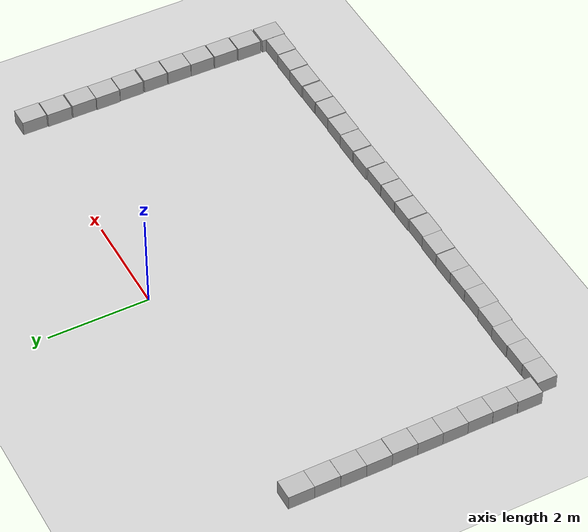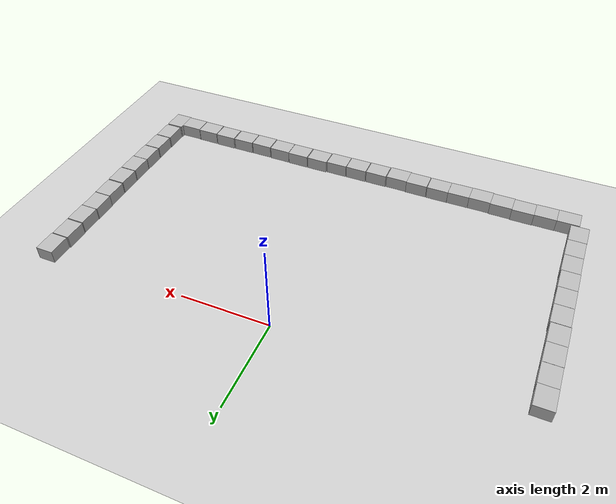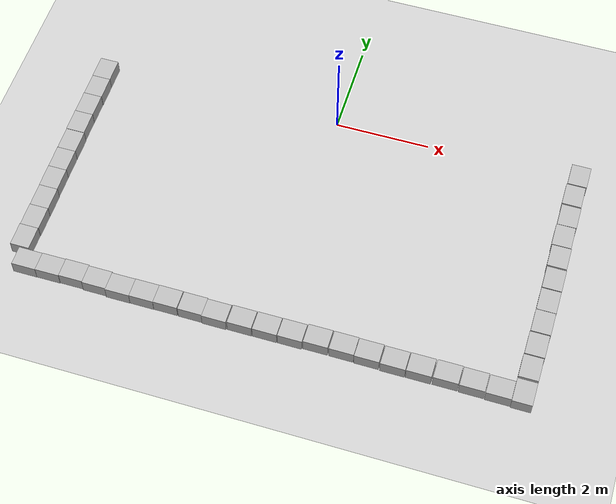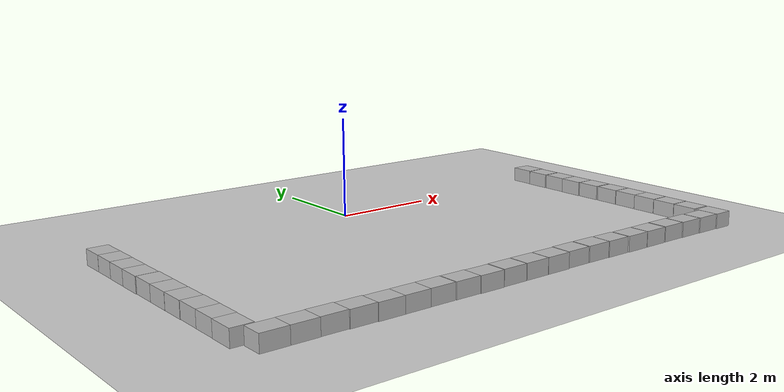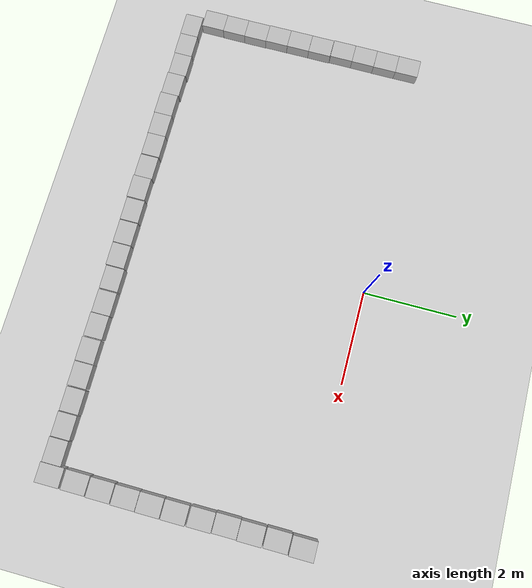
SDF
<sdf version="1.7">
 <world name="default">
  <model name="ground_plane">
   <static>1</static>
   <link name="link">
    <collision name="collision">
     <geometry><plane><normal>0 0 1</normal><size>100 100</size></plane></geometry>
     <surface>
      <contact><collide_bitmask>65535</collide_bitmask></contact>
      <friction><ode><mu>100</mu><mu2>50</mu2></ode></friction>
     </surface>
    </collision>
    <visual name="visual">
     <cast_shadows>0</cast_shadows>
     <geometry><plane><normal>0 0 1</normal><size>100 100</size></plane></geometry>
     <material>
      <script><uri>file://media/materials/scripts/gazebo.material</uri><name>Gazebo/Grey</name></script>
     </material>
    </visual>
   </link>
  </model>
  <model name="cardboard_box_clone_0_clone">
   <pose>4.7419 -5.22507 0.149 0 -0 0</pose>
   <link name="link">
    <inertial>
     <mass>2</mass>
     <inertia>
      <ixx>0.0416667</ixx>
      <ixy>0</ixy>
      <ixz>0</ixz>
      <iyy>0.0566667</iyy>
      <iyz>0</iyz>
      <izz>0.0683333</izz>
     </inertia>
    </inertial>
    <collision name="collision">
     <geometry><box><size>0.5 0.4 0.3</size></box></geometry>
     <surface>
      <friction><ode><mu>1</mu><mu2>1</mu2></ode></friction>
      <contact><ode><kp>1e+07</kp><kd>1</kd><min_depth>0.001</min_depth><max_vel>0.1</max_vel></ode></contact>
     </surface>
    </collision>
    <visual name="visual">
     <pose>0 0 -0.15 0 -0 0</pose>
     <geometry>
      <mesh><uri>model://cardboard_box/meshes/cardboard_box.dae</uri><scale>1.25932 1.00745 0.755591</scale></mesh>
     </geometry>
    </visual>
   </link>
  </model>
  <model name="cardboard_box_clone_3_clone_4">
   <pose>5.22941 -0.017542 0.149 -0 -0 -1.57145</pose>
   <link name="link">
    <inertial>
     <mass>2</mass>
     <inertia>
      <ixx>0.0416667</ixx>
      <ixy>0</ixy>
      <ixz>0</ixz>
      <iyy>0.0566667</iyy>
      <iyz>0</iyz>
      <izz>0.0683333</izz>
     </inertia>
    </inertial>
    <collision name="collision">
     <geometry><box><size>0.5 0.4 0.3</size></box></geometry>
     <surface>
      <friction><ode><mu>1</mu><mu2>1</mu2></ode></friction>
      <contact><ode><kp>1e+07</kp><kd>1</kd><min_depth>0.001</min_depth><max_vel>0.1</max_vel></ode></contact>
     </surface>
    </collision>
    <visual name="visual">
     <pose>0 0 -0.15 0 -0 0</pose>
     <geometry>
      <mesh><uri>model://cardboard_box/meshes/cardboard_box.dae</uri><scale>1.25932 1.00745 0.755591</scale></mesh>
     </geometry>
    </visual>
   </link>
  </model>
  <model name="cardboard_box_clone_3_clone_5">
   <pose>5.21393 -0.534657 0.149 0 0 -1.57145</pose>
   <link name="link">
    <inertial>
     <mass>2</mass>
     <inertia>
      <ixx>0.0416667</ixx>
      <ixy>0</ixy>
      <ixz>0</ixz>
      <iyy>0.0566667</iyy>
      <iyz>0</iyz>
      <izz>0.0683333</izz>
     </inertia>
    </inertial>
    <collision name="collision">
     <geometry><box><size>0.5 0.4 0.3</size></box></geometry>
     <surface>
      <friction><ode><mu>1</mu><mu2>1</mu2></ode></friction>
      <contact><ode><kp>1e+07</kp><kd>1</kd><min_depth>0.001</min_depth><max_vel>0.1</max_vel></ode></contact>
     </surface>
    </collision>
    <visual name="visual">
     <pose>0 0 -0.15 0 -0 0</pose>
     <geometry>
      <mesh><uri>model://cardboard_box/meshes/cardboard_box.dae</uri><scale>1.25932 1.00745 0.755591</scale></mesh>
     </geometry>
    </visual>
   </link>
  </model>
  <model name="cardboard_box_clone_3_clone_6">
   <pose>5.22011 -1.0587 0.149 0 0 -1.56968</pose>
   <link name="link">
    <inertial>
     <mass>2</mass>
     <inertia>
      <ixx>0.0416667</ixx>
      <ixy>0</ixy>
      <ixz>0</ixz>
      <iyy>0.0566667</iyy>
      <iyz>0</iyz>
      <izz>0.0683333</izz>
     </inertia>
    </inertial>
    <collision name="collision">
     <geometry><box><size>0.5 0.4 0.3</size></box></geometry>
     <surface>
      <friction><ode><mu>1</mu><mu2>1</mu2></ode></friction>
      <contact><ode><kp>1e+07</kp><kd>1</kd><min_depth>0.001</min_depth><max_vel>0.1</max_vel></ode></contact>
     </surface>
    </collision>
    <visual name="visual">
     <pose>0 0 -0.15 0 -0 0</pose>
     <geometry>
      <mesh><uri>model://cardboard_box/meshes/cardboard_box.dae</uri><scale>1.25932 1.00745 0.755591</scale></mesh>
     </geometry>
    </visual>
   </link>
  </model>
  <model name="cardboard_box_clone_3_clone_7">
   <pose>5.2103 -1.56434 0.149 -0 -0 -1.56968</pose>
   <link name="link">
    <inertial>
     <mass>2</mass>
     <inertia>
      <ixx>0.0416667</ixx>
      <ixy>0</ixy>
      <ixz>0</ixz>
      <iyy>0.0566667</iyy>
      <iyz>0</iyz>
      <izz>0.0683333</izz>
     </inertia>
    </inertial>
    <collision name="collision">
     <geometry><box><size>0.5 0.4 0.3</size></box></geometry>
     <surface>
      <friction><ode><mu>1</mu><mu2>1</mu2></ode></friction>
      <contact><ode><kp>1e+07</kp><kd>1</kd><min_depth>0.001</min_depth><max_vel>0.1</max_vel></ode></contact>
     </surface>
    </collision>
    <visual name="visual">
     <pose>0 0 -0.15 0 -0 0</pose>
     <geometry>
      <mesh><uri>model://cardboard_box/meshes/cardboard_box.dae</uri><scale>1.25932 1.00745 0.755591</scale></mesh>
     </geometry>
    </visual>
   </link>
  </model>
  <model name="cardboard_box_clone_3_clone_8">
   <pose>5.22199 -2.07455 0.149 0 -0 -1.57133</pose>
   <link name="link">
    <inertial>
     <mass>2</mass>
     <inertia>
      <ixx>0.0416667</ixx>
      <ixy>0</ixy>
      <ixz>0</ixz>
      <iyy>0.0566667</iyy>
      <iyz>0</iyz>
      <izz>0.0683333</izz>
     </inertia>
    </inertial>
    <collision name="collision">
     <geometry><box><size>0.5 0.4 0.3</size></box></geometry>
     <surface>
      <friction><ode><mu>1</mu><mu2>1</mu2></ode></friction>
      <contact><ode><kp>1e+07</kp><kd>1</kd><min_depth>0.001</min_depth><max_vel>0.1</max_vel></ode></contact>
     </surface>
    </collision>
    <visual name="visual">
     <pose>0 0 -0.15 0 -0 0</pose>
     <geometry>
      <mesh><uri>model://cardboard_box/meshes/cardboard_box.dae</uri><scale>1.25932 1.00745 0.755591</scale></mesh>
     </geometry>
    </visual>
   </link>
  </model>
  <model name="cardboard_box_clone_3_clone_9">
   <pose>5.22872 -2.60229 0.149 0 0 -1.57145</pose>
   <link name="link">
    <inertial>
     <mass>2</mass>
     <inertia>
      <ixx>0.0416667</ixx>
      <ixy>0</ixy>
      <ixz>0</ixz>
      <iyy>0.0566667</iyy>
      <iyz>0</iyz>
      <izz>0.0683333</izz>
     </inertia>
    </inertial>
    <collision name="collision">
     <geometry><box><size>0.5 0.4 0.3</size></box></geometry>
     <surface>
      <friction><ode><mu>1</mu><mu2>1</mu2></ode></friction>
      <contact><ode><kp>1e+07</kp><kd>1</kd><min_depth>0.001</min_depth><max_vel>0.1</max_vel></ode></contact>
     </surface>
    </collision>
    <visual name="visual">
     <pose>0 0 -0.15 0 -0 0</pose>
     <geometry>
      <mesh><uri>model://cardboard_box/meshes/cardboard_box.dae</uri><scale>1.25932 1.00745 0.755591</scale></mesh>
     </geometry>
    </visual>
   </link>
  </model>
  <model name="cardboard_box_clone_3_clone_10">
   <pose>5.22575 -3.11743 0.149 0 0 -1.57147</pose>
   <link name="link">
    <inertial>
     <mass>2</mass>
     <inertia>
      <ixx>0.0416667</ixx>
      <ixy>0</ixy>
      <ixz>0</ixz>
      <iyy>0.0566667</iyy>
      <iyz>0</iyz>
      <izz>0.0683333</izz>
     </inertia>
    </inertial>
    <collision name="collision">
     <geometry><box><size>0.5 0.4 0.3</size></box></geometry>
     <surface>
      <friction><ode><mu>1</mu><mu2>1</mu2></ode></friction>
      <contact><ode><kp>1e+07</kp><kd>1</kd><min_depth>0.001</min_depth><max_vel>0.1</max_vel></ode></contact>
     </surface>
    </collision>
    <visual name="visual">
     <pose>0 0 -0.15 0 -0 0</pose>
     <geometry>
      <mesh><uri>model://cardboard_box/meshes/cardboard_box.dae</uri><scale>1.25932 1.00745 0.755591</scale></mesh>
     </geometry>
    </visual>
   </link>
  </model>
  <model name="cardboard_box_clone_3_clone_11">
   <pose>5.22096 -3.62203 0.149 0 -0 -1.57143</pose>
   <link name="link">
    <inertial>
     <mass>2</mass>
     <inertia>
      <ixx>0.0416667</ixx>
      <ixy>0</ixy>
      <ixz>0</ixz>
      <iyy>0.0566667</iyy>
      <iyz>0</iyz>
      <izz>0.0683333</izz>
     </inertia>
    </inertial>
    <collision name="collision">
     <geometry><box><size>0.5 0.4 0.3</size></box></geometry>
     <surface>
      <friction><ode><mu>1</mu><mu2>1</mu2></ode></friction>
      <contact><ode><kp>1e+07</kp><kd>1</kd><min_depth>0.001</min_depth><max_vel>0.1</max_vel></ode></contact>
     </surface>
    </collision>
    <visual name="visual">
     <pose>0 0 -0.15 0 -0 0</pose>
     <geometry>
      <mesh><uri>model://cardboard_box/meshes/cardboard_box.dae</uri><scale>1.25932 1.00745 0.755591</scale></mesh>
     </geometry>
    </visual>
   </link>
  </model>
  <model name="cardboard_box_clone_3_clone_12">
   <pose>5.21202 -4.13807 0.149 -0 -0 -1.57142</pose>
   <link name="link">
    <inertial>
     <mass>2</mass>
     <inertia>
      <ixx>0.0416667</ixx>
      <ixy>0</ixy>
      <ixz>0</ixz>
      <iyy>0.0566667</iyy>
      <iyz>0</iyz>
      <izz>0.0683333</izz>
     </inertia>
    </inertial>
    <collision name="collision">
     <geometry><box><size>0.5 0.4 0.3</size></box></geometry>
     <surface>
      <friction><ode><mu>1</mu><mu2>1</mu2></ode></friction>
      <contact><ode><kp>1e+07</kp><kd>1</kd><min_depth>0.001</min_depth><max_vel>0.1</max_vel></ode></contact>
     </surface>
    </collision>
    <visual name="visual">
     <pose>0 0 -0.15 0 -0 0</pose>
     <geometry>
      <mesh><uri>model://cardboard_box/meshes/cardboard_box.dae</uri><scale>1.25932 1.00745 0.755591</scale></mesh>
     </geometry>
    </visual>
   </link>
  </model>
  <model name="cardboard_box_clone_3_clone_13">
   <pose>5.20127 -4.65492 0.149 0 0 -1.57145</pose>
   <link name="link">
    <inertial>
     <mass>2</mass>
     <inertia>
      <ixx>0.0416667</ixx>
      <ixy>0</ixy>
      <ixz>0</ixz>
      <iyy>0.0566667</iyy>
      <iyz>0</iyz>
      <izz>0.0683333</izz>
     </inertia>
    </inertial>
    <collision name="collision">
     <geometry><box><size>0.5 0.4 0.3</size></box></geometry>
     <surface>
      <friction><ode><mu>1</mu><mu2>1</mu2></ode></friction>
      <contact><ode><kp>1e+07</kp><kd>1</kd><min_depth>0.001</min_depth><max_vel>0.1</max_vel></ode></contact>
     </surface>
    </collision>
    <visual name="visual">
     <pose>0 0 -0.15 0 -0 0</pose>
     <geometry>
      <mesh><uri>model://cardboard_box/meshes/cardboard_box.dae</uri><scale>1.25932 1.00745 0.755591</scale></mesh>
     </geometry>
    </visual>
   </link>
  </model>
  <model name="cardboard_box_clone_3_clone_14">
   <pose>5.19711 -5.19229 0.149 0 0 -1.57145</pose>
   <link name="link">
    <inertial>
     <mass>2</mass>
     <inertia>
      <ixx>0.0416667</ixx>
      <ixy>0</ixy>
      <ixz>0</ixz>
      <iyy>0.0566667</iyy>
      <iyz>0</iyz>
      <izz>0.0683333</izz>
     </inertia>
    </inertial>
    <collision name="collision">
     <geometry><box><size>0.5 0.4 0.3</size></box></geometry>
     <surface>
      <friction><ode><mu>1</mu><mu2>1</mu2></ode></friction>
      <contact><ode><kp>1e+07</kp><kd>1</kd><min_depth>0.001</min_depth><max_vel>0.1</max_vel></ode></contact>
     </surface>
    </collision>
    <visual name="visual">
     <pose>0 0 -0.15 0 -0 0</pose>
     <geometry>
      <mesh><uri>model://cardboard_box/meshes/cardboard_box.dae</uri><scale>1.25932 1.00745 0.755591</scale></mesh>
     </geometry>
    </visual>
   </link>
  </model>
  <model name="cardboard_box_clone_0_clone_clone">
   <pose>-4.94789 -5.20823 0.149 0 -0 0.002209</pose>
   <link name="link">
    <inertial>
     <mass>2</mass>
     <inertia>
      <ixx>0.0416667</ixx>
      <ixy>0</ixy>
      <ixz>0</ixz>
      <iyy>0.0566667</iyy>
      <iyz>0</iyz>
      <izz>0.0683333</izz>
     </inertia>
    </inertial>
    <collision name="collision">
     <geometry><box><size>0.5 0.4 0.3</size></box></geometry>
     <surface>
      <friction><ode><mu>1</mu><mu2>1</mu2></ode></friction>
      <contact><ode><kp>1e+07</kp><kd>1</kd><min_depth>0.001</min_depth><max_vel>0.1</max_vel></ode></contact>
     </surface>
    </collision>
    <visual name="visual">
     <pose>0 0 -0.15 0 -0 0</pose>
     <geometry>
      <mesh><uri>model://cardboard_box/meshes/cardboard_box.dae</uri><scale>1.25932 1.00745 0.755591</scale></mesh>
     </geometry>
    </visual>
   </link>
  </model>
  <model name="cardboard_box_clone_0_clone_clone_1">
   <pose>4.22821 -5.21388 0.149 0 -0 0</pose>
   <link name="link">
    <inertial>
     <mass>2</mass>
     <inertia>
      <ixx>0.0416667</ixx>
      <ixy>0</ixy>
      <ixz>0</ixz>
      <iyy>0.0566667</iyy>
      <iyz>0</iyz>
      <izz>0.0683333</izz>
     </inertia>
    </inertial>
    <collision name="collision">
     <geometry><box><size>0.5 0.4 0.3</size></box></geometry>
     <surface>
      <friction><ode><mu>1</mu><mu2>1</mu2></ode></friction>
      <contact><ode><kp>1e+07</kp><kd>1</kd><min_depth>0.001</min_depth><max_vel>0.1</max_vel></ode></contact>
     </surface>
    </collision>
    <visual name="visual">
     <pose>0 0 -0.15 0 -0 0</pose>
     <geometry>
      <mesh><uri>model://cardboard_box/meshes/cardboard_box.dae</uri><scale>1.25932 1.00745 0.755591</scale></mesh>
     </geometry>
    </visual>
   </link>
  </model>
  <model name="cardboard_box_clone_0_clone_clone_1_clone">
   <pose>3.71067 -5.20506 0.149 0 -0 0</pose>
   <link name="link">
    <inertial>
     <mass>2</mass>
     <inertia>
      <ixx>0.0416667</ixx>
      <ixy>0</ixy>
      <ixz>0</ixz>
      <iyy>0.0566667</iyy>
      <iyz>0</iyz>
      <izz>0.0683333</izz>
     </inertia>
    </inertial>
    <collision name="collision">
     <geometry><box><size>0.5 0.4 0.3</size></box></geometry>
     <surface>
      <friction><ode><mu>1</mu><mu2>1</mu2></ode></friction>
      <contact><ode><kp>1e+07</kp><kd>1</kd><min_depth>0.001</min_depth><max_vel>0.1</max_vel></ode></contact>
     </surface>
    </collision>
    <visual name="visual">
     <pose>0 0 -0.15 0 -0 0</pose>
     <geometry>
      <mesh><uri>model://cardboard_box/meshes/cardboard_box.dae</uri><scale>1.25932 1.00745 0.755591</scale></mesh>
     </geometry>
    </visual>
   </link>
  </model>
  <model name="cardboard_box_clone_0_clone_clone_1_clone_clone">
   <pose>3.18585 -5.21037 0.149 0 -0 0</pose>
   <link name="link">
    <inertial>
     <mass>2</mass>
     <inertia>
      <ixx>0.0416667</ixx>
      <ixy>0</ixy>
      <ixz>0</ixz>
      <iyy>0.0566667</iyy>
      <iyz>0</iyz>
      <izz>0.0683333</izz>
     </inertia>
    </inertial>
    <collision name="collision">
     <geometry><box><size>0.5 0.4 0.3</size></box></geometry>
     <surface>
      <friction><ode><mu>1</mu><mu2>1</mu2></ode></friction>
      <contact><ode><kp>1e+07</kp><kd>1</kd><min_depth>0.001</min_depth><max_vel>0.1</max_vel></ode></contact>
     </surface>
    </collision>
    <visual name="visual">
     <pose>0 0 -0.15 0 -0 0</pose>
     <geometry>
      <mesh><uri>model://cardboard_box/meshes/cardboard_box.dae</uri><scale>1.25932 1.00745 0.755591</scale></mesh>
     </geometry>
    </visual>
   </link>
  </model>
  <model name="cardboard_box_clone_0_clone_clone_1_clone_clone_0">
   <pose>2.67264 -5.21412 0.149 0 -0 0</pose>
   <link name="link">
    <inertial>
     <mass>2</mass>
     <inertia>
      <ixx>0.0416667</ixx>
      <ixy>0</ixy>
      <ixz>0</ixz>
      <iyy>0.0566667</iyy>
      <iyz>0</iyz>
      <izz>0.0683333</izz>
     </inertia>
    </inertial>
    <collision name="collision">
     <geometry><box><size>0.5 0.4 0.3</size></box></geometry>
     <surface>
      <friction><ode><mu>1</mu><mu2>1</mu2></ode></friction>
      <contact><ode><kp>1e+07</kp><kd>1</kd><min_depth>0.001</min_depth><max_vel>0.1</max_vel></ode></contact>
     </surface>
    </collision>
    <visual name="visual">
     <pose>0 0 -0.15 0 -0 0</pose>
     <geometry>
      <mesh><uri>model://cardboard_box/meshes/cardboard_box.dae</uri><scale>1.25932 1.00745 0.755591</scale></mesh>
     </geometry>
    </visual>
   </link>
  </model>
  <model name="cardboard_box_clone_0_clone_clone_1_clone_clone_1">
   <pose>2.15125 -5.20314 0.149 0 -0 0</pose>
   <link name="link">
    <inertial>
     <mass>2</mass>
     <inertia>
      <ixx>0.0416667</ixx>
      <ixy>0</ixy>
      <ixz>0</ixz>
      <iyy>0.0566667</iyy>
      <iyz>0</iyz>
      <izz>0.0683333</izz>
     </inertia>
    </inertial>
    <collision name="collision">
     <geometry><box><size>0.5 0.4 0.3</size></box></geometry>
     <surface>
      <friction><ode><mu>1</mu><mu2>1</mu2></ode></friction>
      <contact><ode><kp>1e+07</kp><kd>1</kd><min_depth>0.001</min_depth><max_vel>0.1</max_vel></ode></contact>
     </surface>
    </collision>
    <visual name="visual">
     <pose>0 0 -0.15 0 -0 0</pose>
     <geometry>
      <mesh><uri>model://cardboard_box/meshes/cardboard_box.dae</uri><scale>1.25932 1.00745 0.755591</scale></mesh>
     </geometry>
    </visual>
   </link>
  </model>
  <model name="cardboard_box_clone_0_clone_clone_1_clone_clone_2">
   <pose>1.64451 -5.19354 0.149 0 -0 0</pose>
   <link name="link">
    <inertial>
     <mass>2</mass>
     <inertia>
      <ixx>0.0416667</ixx>
      <ixy>0</ixy>
      <ixz>0</ixz>
      <iyy>0.0566667</iyy>
      <iyz>0</iyz>
      <izz>0.0683333</izz>
     </inertia>
    </inertial>
    <collision name="collision">
     <geometry><box><size>0.5 0.4 0.3</size></box></geometry>
     <surface>
      <friction><ode><mu>1</mu><mu2>1</mu2></ode></friction>
      <contact><ode><kp>1e+07</kp><kd>1</kd><min_depth>0.001</min_depth><max_vel>0.1</max_vel></ode></contact>
     </surface>
    </collision>
    <visual name="visual">
     <pose>0 0 -0.15 0 -0 0</pose>
     <geometry>
      <mesh><uri>model://cardboard_box/meshes/cardboard_box.dae</uri><scale>1.25932 1.00745 0.755591</scale></mesh>
     </geometry>
    </visual>
   </link>
  </model>
  <model name="cardboard_box_clone_0_clone_clone_1_clone_clone_3">
   <pose>1.1225 -5.19279 0.149 0 -0 0</pose>
   <link name="link">
    <inertial>
     <mass>2</mass>
     <inertia>
      <ixx>0.0416667</ixx>
      <ixy>0</ixy>
      <ixz>0</ixz>
      <iyy>0.0566667</iyy>
      <iyz>0</iyz>
      <izz>0.0683333</izz>
     </inertia>
    </inertial>
    <collision name="collision">
     <geometry><box><size>0.5 0.4 0.3</size></box></geometry>
     <surface>
      <friction><ode><mu>1</mu><mu2>1</mu2></ode></friction>
      <contact><ode><kp>1e+07</kp><kd>1</kd><min_depth>0.001</min_depth><max_vel>0.1</max_vel></ode></contact>
     </surface>
    </collision>
    <visual name="visual">
     <pose>0 0 -0.15 0 -0 0</pose>
     <geometry>
      <mesh><uri>model://cardboard_box/meshes/cardboard_box.dae</uri><scale>1.25932 1.00745 0.755591</scale></mesh>
     </geometry>
    </visual>
   </link>
  </model>
  <model name="cardboard_box_clone_0_clone_clone_1_clone_clone_3_clone">
   <pose>0.607755 -5.21373 0.149 0 -0 0</pose>
   <link name="link">
    <inertial>
     <mass>2</mass>
     <inertia>
      <ixx>0.0416667</ixx>
      <ixy>0</ixy>
      <ixz>0</ixz>
      <iyy>0.0566667</iyy>
      <iyz>0</iyz>
      <izz>0.0683333</izz>
     </inertia>
    </inertial>
    <collision name="collision">
     <geometry><box><size>0.5 0.4 0.3</size></box></geometry>
     <surface>
      <friction><ode><mu>1</mu><mu2>1</mu2></ode></friction>
      <contact><ode><kp>1e+07</kp><kd>1</kd><min_depth>0.001</min_depth><max_vel>0.1</max_vel></ode></contact>
     </surface>
    </collision>
    <visual name="visual">
     <pose>0 0 -0.15 0 -0 0</pose>
     <geometry>
      <mesh><uri>model://cardboard_box/meshes/cardboard_box.dae</uri><scale>1.25932 1.00745 0.755591</scale></mesh>
     </geometry>
    </visual>
   </link>
  </model>
  <model name="cardboard_box_clone_0_clone_clone_1_clone_clone_3_clone_0">
   <pose>0.097509 -5.21699 0.149 0 -0 0</pose>
   <link name="link">
    <inertial>
     <mass>2</mass>
     <inertia>
      <ixx>0.0416667</ixx>
      <ixy>0</ixy>
      <ixz>0</ixz>
      <iyy>0.0566667</iyy>
      <iyz>0</iyz>
      <izz>0.0683333</izz>
     </inertia>
    </inertial>
    <collision name="collision">
     <geometry><box><size>0.5 0.4 0.3</size></box></geometry>
     <surface>
      <friction><ode><mu>1</mu><mu2>1</mu2></ode></friction>
      <contact><ode><kp>1e+07</kp><kd>1</kd><min_depth>0.001</min_depth><max_vel>0.1</max_vel></ode></contact>
     </surface>
    </collision>
    <visual name="visual">
     <pose>0 0 -0.15 0 -0 0</pose>
     <geometry>
      <mesh><uri>model://cardboard_box/meshes/cardboard_box.dae</uri><scale>1.25932 1.00745 0.755591</scale></mesh>
     </geometry>
    </visual>
   </link>
  </model>
  <model name="cardboard_box_clone_0_clone_clone_1_clone_clone_3_clone_1">
   <pose>-0.41726 -5.22028 0.149 0 -0 0</pose>
   <link name="link">
    <inertial>
     <mass>2</mass>
     <inertia>
      <ixx>0.0416667</ixx>
      <ixy>0</ixy>
      <ixz>0</ixz>
      <iyy>0.0566667</iyy>
      <iyz>0</iyz>
      <izz>0.0683333</izz>
     </inertia>
    </inertial>
    <collision name="collision">
     <geometry><box><size>0.5 0.4 0.3</size></box></geometry>
     <surface>
      <friction><ode><mu>1</mu><mu2>1</mu2></ode></friction>
      <contact><ode><kp>1e+07</kp><kd>1</kd><min_depth>0.001</min_depth><max_vel>0.1</max_vel></ode></contact>
     </surface>
    </collision>
    <visual name="visual">
     <pose>0 0 -0.15 0 -0 0</pose>
     <geometry>
      <mesh><uri>model://cardboard_box/meshes/cardboard_box.dae</uri><scale>1.25932 1.00745 0.755591</scale></mesh>
     </geometry>
    </visual>
   </link>
  </model>
  <model name="cardboard_box_clone_0_clone_clone_1_clone_clone_3_clone_2">
   <pose>-0.936489 -5.23317 0.149 -0 -0 -0.000377</pose>
   <link name="link">
    <inertial>
     <mass>2</mass>
     <inertia>
      <ixx>0.0416667</ixx>
      <ixy>0</ixy>
      <ixz>0</ixz>
      <iyy>0.0566667</iyy>
      <iyz>0</iyz>
      <izz>0.0683333</izz>
     </inertia>
    </inertial>
    <collision name="collision">
     <geometry><box><size>0.5 0.4 0.3</size></box></geometry>
     <surface>
      <friction><ode><mu>1</mu><mu2>1</mu2></ode></friction>
      <contact><ode><kp>1e+07</kp><kd>1</kd><min_depth>0.001</min_depth><max_vel>0.1</max_vel></ode></contact>
     </surface>
    </collision>
    <visual name="visual">
     <pose>0 0 -0.15 0 -0 0</pose>
     <geometry>
      <mesh><uri>model://cardboard_box/meshes/cardboard_box.dae</uri><scale>1.25932 1.00745 0.755591</scale></mesh>
     </geometry>
    </visual>
   </link>
  </model>
  <model name="cardboard_box_clone_0_clone_clone_1_clone_clone_3_clone_3">
   <pose>-1.43566 -5.21937 0.149 0 0 -0.000382</pose>
   <link name="link">
    <inertial>
     <mass>2</mass>
     <inertia>
      <ixx>0.0416667</ixx>
      <ixy>0</ixy>
      <ixz>0</ixz>
      <iyy>0.0566667</iyy>
      <iyz>0</iyz>
      <izz>0.0683333</izz>
     </inertia>
    </inertial>
    <collision name="collision">
     <geometry><box><size>0.5 0.4 0.3</size></box></geometry>
     <surface>
      <friction><ode><mu>1</mu><mu2>1</mu2></ode></friction>
      <contact><ode><kp>1e+07</kp><kd>1</kd><min_depth>0.001</min_depth><max_vel>0.1</max_vel></ode></contact>
     </surface>
    </collision>
    <visual name="visual">
     <pose>0 0 -0.15 0 -0 0</pose>
     <geometry>
      <mesh><uri>model://cardboard_box/meshes/cardboard_box.dae</uri><scale>1.25932 1.00745 0.755591</scale></mesh>
     </geometry>
    </visual>
   </link>
  </model>
  <model name="cardboard_box_clone_0_clone_clone_1_clone_clone_3_clone_3_clone">
   <pose>-1.95023 -5.21543 0.149 0 -0 0.000228</pose>
   <link name="link">
    <inertial>
     <mass>2</mass>
     <inertia>
      <ixx>0.0416667</ixx>
      <ixy>0</ixy>
      <ixz>0</ixz>
      <iyy>0.0566667</iyy>
      <iyz>0</iyz>
      <izz>0.0683333</izz>
     </inertia>
    </inertial>
    <collision name="collision">
     <geometry><box><size>0.5 0.4 0.3</size></box></geometry>
     <surface>
      <friction><ode><mu>1</mu><mu2>1</mu2></ode></friction>
      <contact><ode><kp>1e+07</kp><kd>1</kd><min_depth>0.001</min_depth><max_vel>0.1</max_vel></ode></contact>
     </surface>
    </collision>
    <visual name="visual">
     <pose>0 0 -0.15 0 -0 0</pose>
     <geometry>
      <mesh><uri>model://cardboard_box/meshes/cardboard_box.dae</uri><scale>1.25932 1.00745 0.755591</scale></mesh>
     </geometry>
    </visual>
   </link>
  </model>
  <model name="cardboard_box_clone_0_clone_clone_1_clone_clone_3_clone_3_clone_0">
   <pose>-2.45059 -5.22027 0.149 0 -0 0.000258</pose>
   <link name="link">
    <inertial>
     <mass>2</mass>
     <inertia>
      <ixx>0.0416667</ixx>
      <ixy>0</ixy>
      <ixz>0</ixz>
      <iyy>0.0566667</iyy>
      <iyz>0</iyz>
      <izz>0.0683333</izz>
     </inertia>
    </inertial>
    <collision name="collision">
     <geometry><box><size>0.5 0.4 0.3</size></box></geometry>
     <surface>
      <friction><ode><mu>1</mu><mu2>1</mu2></ode></friction>
      <contact><ode><kp>1e+07</kp><kd>1</kd><min_depth>0.001</min_depth><max_vel>0.1</max_vel></ode></contact>
     </surface>
    </collision>
    <visual name="visual">
     <pose>0 0 -0.15 0 -0 0</pose>
     <geometry>
      <mesh><uri>model://cardboard_box/meshes/cardboard_box.dae</uri><scale>1.25932 1.00745 0.755591</scale></mesh>
     </geometry>
    </visual>
   </link>
  </model>
  <model name="cardboard_box_clone_0_clone_clone_1_clone_clone_3_clone_3_clone_1">
   <pose>-2.95011 -5.22541 0.149 0 -0 0.000264</pose>
   <link name="link">
    <inertial>
     <mass>2</mass>
     <inertia>
      <ixx>0.0416667</ixx>
      <ixy>0</ixy>
      <ixz>0</ixz>
      <iyy>0.0566667</iyy>
      <iyz>0</iyz>
      <izz>0.0683333</izz>
     </inertia>
    </inertial>
    <collision name="collision">
     <geometry><box><size>0.5 0.4 0.3</size></box></geometry>
     <surface>
      <friction><ode><mu>1</mu><mu2>1</mu2></ode></friction>
      <contact><ode><kp>1e+07</kp><kd>1</kd><min_depth>0.001</min_depth><max_vel>0.1</max_vel></ode></contact>
     </surface>
    </collision>
    <visual name="visual">
     <pose>0 0 -0.15 0 -0 0</pose>
     <geometry>
      <mesh><uri>model://cardboard_box/meshes/cardboard_box.dae</uri><scale>1.25932 1.00745 0.755591</scale></mesh>
     </geometry>
    </visual>
   </link>
  </model>
  <model name="cardboard_box_clone_0_clone_clone_clone">
   <pose>-3.44946 -5.20833 0.149 0 -0 0.000859</pose>
   <link name="link">
    <inertial>
     <mass>2</mass>
     <inertia>
      <ixx>0.0416667</ixx>
      <ixy>0</ixy>
      <ixz>0</ixz>
      <iyy>0.0566667</iyy>
      <iyz>0</iyz>
      <izz>0.0683333</izz>
     </inertia>
    </inertial>
    <collision name="collision">
     <geometry><box><size>0.5 0.4 0.3</size></box></geometry>
     <surface>
      <friction><ode><mu>1</mu><mu2>1</mu2></ode></friction>
      <contact><ode><kp>1e+07</kp><kd>1</kd><min_depth>0.001</min_depth><max_vel>0.1</max_vel></ode></contact>
     </surface>
    </collision>
    <visual name="visual">
     <pose>0 0 -0.15 0 -0 0</pose>
     <geometry>
      <mesh><uri>model://cardboard_box/meshes/cardboard_box.dae</uri><scale>1.25932 1.00745 0.755591</scale></mesh>
     </geometry>
    </visual>
   </link>
  </model>
  <model name="cardboard_box_clone_0_clone_clone_clone_0">
   <pose>-3.94882 -5.19259 0.149 0 -0 0.002251</pose>
   <link name="link">
    <inertial>
     <mass>2</mass>
     <inertia>
      <ixx>0.0416667</ixx>
      <ixy>0</ixy>
      <ixz>0</ixz>
      <iyy>0.0566667</iyy>
      <iyz>0</iyz>
      <izz>0.0683333</izz>
     </inertia>
    </inertial>
    <collision name="collision">
     <geometry><box><size>0.5 0.4 0.3</size></box></geometry>
     <surface>
      <friction><ode><mu>1</mu><mu2>1</mu2></ode></friction>
      <contact><ode><kp>1e+07</kp><kd>1</kd><min_depth>0.001</min_depth><max_vel>0.1</max_vel></ode></contact>
     </surface>
    </collision>
    <visual name="visual">
     <pose>0 0 -0.15 0 -0 0</pose>
     <geometry>
      <mesh><uri>model://cardboard_box/meshes/cardboard_box.dae</uri><scale>1.25932 1.00745 0.755591</scale></mesh>
     </geometry>
    </visual>
   </link>
  </model>
  <model name="cardboard_box_clone_0_clone_clone_clone_1">
   <pose>-4.44793 -5.20311 0.149 0 -0 0.002209</pose>
   <link name="link">
    <inertial>
     <mass>2</mass>
     <inertia>
      <ixx>0.0416667</ixx>
      <ixy>0</ixy>
      <ixz>0</ixz>
      <iyy>0.0566667</iyy>
      <iyz>0</iyz>
      <izz>0.0683333</izz>
     </inertia>
    </inertial>
    <collision name="collision">
     <geometry><box><size>0.5 0.4 0.3</size></box></geometry>
     <surface>
      <friction><ode><mu>1</mu><mu2>1</mu2></ode></friction>
      <contact><ode><kp>1e+07</kp><kd>1</kd><min_depth>0.001</min_depth><max_vel>0.1</max_vel></ode></contact>
     </surface>
    </collision>
    <visual name="visual">
     <pose>0 0 -0.15 0 -0 0</pose>
     <geometry>
      <mesh><uri>model://cardboard_box/meshes/cardboard_box.dae</uri><scale>1.25932 1.00745 0.755591</scale></mesh>
     </geometry>
    </visual>
   </link>
  </model>
  <model name="cardboard_box_clone_3_clone_12_clone">
   <pose>-5.20941 -4.73302 0.149 0 -0 -1.57148</pose>
   <link name="link">
    <inertial>
     <mass>2</mass>
     <inertia>
      <ixx>0.0416667</ixx>
      <ixy>0</ixy>
      <ixz>0</ixz>
      <iyy>0.0566667</iyy>
      <iyz>0</iyz>
      <izz>0.0683333</izz>
     </inertia>
    </inertial>
    <collision name="collision">
     <geometry><box><size>0.5 0.4 0.3</size></box></geometry>
     <surface>
      <friction><ode><mu>1</mu><mu2>1</mu2></ode></friction>
      <contact><ode><kp>1e+07</kp><kd>1</kd><min_depth>0.001</min_depth><max_vel>0.1</max_vel></ode></contact>
     </surface>
    </collision>
    <visual name="visual">
     <pose>0 0 -0.15 0 -0 0</pose>
     <geometry>
      <mesh><uri>model://cardboard_box/meshes/cardboard_box.dae</uri><scale>1.25932 1.00745 0.755591</scale></mesh>
     </geometry>
    </visual>
   </link>
  </model>
  <model name="cardboard_box_clone_3_clone_12_clone_clone">
   <pose>-5.20275 -4.2337 0.149 0 0 -1.57134</pose>
   <link name="link">
    <inertial>
     <mass>2</mass>
     <inertia>
      <ixx>0.0416667</ixx>
      <ixy>0</ixy>
      <ixz>0</ixz>
      <iyy>0.0566667</iyy>
      <iyz>0</iyz>
      <izz>0.0683333</izz>
     </inertia>
    </inertial>
    <collision name="collision">
     <geometry><box><size>0.5 0.4 0.3</size></box></geometry>
     <surface>
      <friction><ode><mu>1</mu><mu2>1</mu2></ode></friction>
      <contact><ode><kp>1e+07</kp><kd>1</kd><min_depth>0.001</min_depth><max_vel>0.1</max_vel></ode></contact>
     </surface>
    </collision>
    <visual name="visual">
     <pose>0 0 -0.15 0 -0 0</pose>
     <geometry>
      <mesh><uri>model://cardboard_box/meshes/cardboard_box.dae</uri><scale>1.25932 1.00745 0.755591</scale></mesh>
     </geometry>
    </visual>
   </link>
  </model>
  <model name="cardboard_box_clone_3_clone_12_clone_clone_0">
   <pose>-5.2 -3.73449 0.149 -0 -0 -1.57147</pose>
   <link name="link">
    <inertial>
     <mass>2</mass>
     <inertia>
      <ixx>0.0416667</ixx>
      <ixy>0</ixy>
      <ixz>0</ixz>
      <iyy>0.0566667</iyy>
      <iyz>0</iyz>
      <izz>0.0683333</izz>
     </inertia>
    </inertial>
    <collision name="collision">
     <geometry><box><size>0.5 0.4 0.3</size></box></geometry>
     <surface>
      <friction><ode><mu>1</mu><mu2>1</mu2></ode></friction>
      <contact><ode><kp>1e+07</kp><kd>1</kd><min_depth>0.001</min_depth><max_vel>0.1</max_vel></ode></contact>
     </surface>
    </collision>
    <visual name="visual">
     <pose>0 0 -0.15 0 -0 0</pose>
     <geometry>
      <mesh><uri>model://cardboard_box/meshes/cardboard_box.dae</uri><scale>1.25932 1.00745 0.755591</scale></mesh>
     </geometry>
    </visual>
   </link>
  </model>
  <model name="cardboard_box_clone_3_clone_12_clone_clone_1">
   <pose>-5.20643 -3.23518 0.149 0 0 -1.57144</pose>
   <link name="link">
    <inertial>
     <mass>2</mass>
     <inertia>
      <ixx>0.0416667</ixx>
      <ixy>0</ixy>
      <ixz>0</ixz>
      <iyy>0.0566667</iyy>
      <iyz>0</iyz>
      <izz>0.0683333</izz>
     </inertia>
    </inertial>
    <collision name="collision">
     <geometry><box><size>0.5 0.4 0.3</size></box></geometry>
     <surface>
      <friction><ode><mu>1</mu><mu2>1</mu2></ode></friction>
      <contact><ode><kp>1e+07</kp><kd>1</kd><min_depth>0.001</min_depth><max_vel>0.1</max_vel></ode></contact>
     </surface>
    </collision>
    <visual name="visual">
     <pose>0 0 -0.15 0 -0 0</pose>
     <geometry>
      <mesh><uri>model://cardboard_box/meshes/cardboard_box.dae</uri><scale>1.25932 1.00745 0.755591</scale></mesh>
     </geometry>
    </visual>
   </link>
  </model>
  <model name="cardboard_box_clone_3_clone_12_clone_clone_1_clone">
   <pose>-5.20784 -2.73577 0.149 0 0 -1.57143</pose>
   <link name="link">
    <inertial>
     <mass>2</mass>
     <inertia>
      <ixx>0.0416667</ixx>
      <ixy>0</ixy>
      <ixz>0</ixz>
      <iyy>0.0566667</iyy>
      <iyz>0</iyz>
      <izz>0.0683333</izz>
     </inertia>
    </inertial>
    <collision name="collision">
     <geometry><box><size>0.5 0.4 0.3</size></box></geometry>
     <surface>
      <friction><ode><mu>1</mu><mu2>1</mu2></ode></friction>
      <contact><ode><kp>1e+07</kp><kd>1</kd><min_depth>0.001</min_depth><max_vel>0.1</max_vel></ode></contact>
     </surface>
    </collision>
    <visual name="visual">
     <pose>0 0 -0.15 0 -0 0</pose>
     <geometry>
      <mesh><uri>model://cardboard_box/meshes/cardboard_box.dae</uri><scale>1.25932 1.00745 0.755591</scale></mesh>
     </geometry>
    </visual>
   </link>
  </model>
  <model name="cardboard_box_clone_3_clone_12_clone_clone_1_clone_0">
   <pose>-5.2061 -2.23542 0.149 0 0 -1.57143</pose>
   <link name="link">
    <inertial>
     <mass>2</mass>
     <inertia>
      <ixx>0.0416667</ixx>
      <ixy>0</ixy>
      <ixz>0</ixz>
      <iyy>0.0566667</iyy>
      <iyz>0</iyz>
      <izz>0.0683333</izz>
     </inertia>
    </inertial>
    <collision name="collision">
     <geometry><box><size>0.5 0.4 0.3</size></box></geometry>
     <surface>
      <friction><ode><mu>1</mu><mu2>1</mu2></ode></friction>
      <contact><ode><kp>1e+07</kp><kd>1</kd><min_depth>0.001</min_depth><max_vel>0.1</max_vel></ode></contact>
     </surface>
    </collision>
    <visual name="visual">
     <pose>0 0 -0.15 0 -0 0</pose>
     <geometry>
      <mesh><uri>model://cardboard_box/meshes/cardboard_box.dae</uri><scale>1.25932 1.00745 0.755591</scale></mesh>
     </geometry>
    </visual>
   </link>
  </model>
  <model name="cardboard_box_clone_3_clone_12_clone_clone_1_clone_1">
   <pose>-5.21652 -1.72994 0.149 0 -0 -1.57143</pose>
   <link name="link">
    <inertial>
     <mass>2</mass>
     <inertia>
      <ixx>0.0416667</ixx>
      <ixy>0</ixy>
      <ixz>0</ixz>
      <iyy>0.0566667</iyy>
      <iyz>0</iyz>
      <izz>0.0683333</izz>
     </inertia>
    </inertial>
    <collision name="collision">
     <geometry><box><size>0.5 0.4 0.3</size></box></geometry>
     <surface>
      <friction><ode><mu>1</mu><mu2>1</mu2></ode></friction>
      <contact><ode><kp>1e+07</kp><kd>1</kd><min_depth>0.001</min_depth><max_vel>0.1</max_vel></ode></contact>
     </surface>
    </collision>
    <visual name="visual">
     <pose>0 0 -0.15 0 -0 0</pose>
     <geometry>
      <mesh><uri>model://cardboard_box/meshes/cardboard_box.dae</uri><scale>1.25932 1.00745 0.755591</scale></mesh>
     </geometry>
    </visual>
   </link>
  </model>
  <model name="cardboard_box_clone_3_clone_12_clone_clone_1_clone_2">
   <pose>-5.21377 -1.23076 0.149 0 0 -1.57143</pose>
   <link name="link">
    <inertial>
     <mass>2</mass>
     <inertia>
      <ixx>0.0416667</ixx>
      <ixy>0</ixy>
      <ixz>0</ixz>
      <iyy>0.0566667</iyy>
      <iyz>0</iyz>
      <izz>0.0683333</izz>
     </inertia>
    </inertial>
    <collision name="collision">
     <geometry><box><size>0.5 0.4 0.3</size></box></geometry>
     <surface>
      <friction><ode><mu>1</mu><mu2>1</mu2></ode></friction>
      <contact><ode><kp>1e+07</kp><kd>1</kd><min_depth>0.001</min_depth><max_vel>0.1</max_vel></ode></contact>
     </surface>
    </collision>
    <visual name="visual">
     <pose>0 0 -0.15 0 -0 0</pose>
     <geometry>
      <mesh><uri>model://cardboard_box/meshes/cardboard_box.dae</uri><scale>1.25932 1.00745 0.755591</scale></mesh>
     </geometry>
    </visual>
   </link>
  </model>
  <model name="cardboard_box_clone_3_clone_12_clone_clone_1_clone_3">
   <pose>-5.20957 -0.729667 0.149 0 -0 -1.57085</pose>
   <link name="link">
    <inertial>
     <mass>2</mass>
     <inertia>
      <ixx>0.0416667</ixx>
      <ixy>0</ixy>
      <ixz>0</ixz>
      <iyy>0.0566667</iyy>
      <iyz>0</iyz>
      <izz>0.0683333</izz>
     </inertia>
    </inertial>
    <collision name="collision">
     <geometry><box><size>0.5 0.4 0.3</size></box></geometry>
     <surface>
      <friction><ode><mu>1</mu><mu2>1</mu2></ode></friction>
      <contact><ode><kp>1e+07</kp><kd>1</kd><min_depth>0.001</min_depth><max_vel>0.1</max_vel></ode></contact>
     </surface>
    </collision>
    <visual name="visual">
     <pose>0 0 -0.15 0 -0 0</pose>
     <geometry>
      <mesh><uri>model://cardboard_box/meshes/cardboard_box.dae</uri><scale>1.25932 1.00745 0.755591</scale></mesh>
     </geometry>
    </visual>
   </link>
  </model>
  <model name="cardboard_box_clone_3_clone_12_clone_clone_1_clone_4">
   <pose>-5.21071 -0.23029 0.149 0 0 -1.57081</pose>
   <link name="link">
    <inertial>
     <mass>2</mass>
     <inertia>
      <ixx>0.0416667</ixx>
      <ixy>0</ixy>
      <ixz>0</ixz>
      <iyy>0.0566667</iyy>
      <iyz>0</iyz>
      <izz>0.0683333</izz>
     </inertia>
    </inertial>
    <collision name="collision">
     <geometry><box><size>0.5 0.4 0.3</size></box></geometry>
     <surface>
      <friction><ode><mu>1</mu><mu2>1</mu2></ode></friction>
      <contact><ode><kp>1e+07</kp><kd>1</kd><min_depth>0.001</min_depth><max_vel>0.1</max_vel></ode></contact>
     </surface>
    </collision>
    <visual name="visual">
     <pose>0 0 -0.15 0 -0 0</pose>
     <geometry>
      <mesh><uri>model://cardboard_box/meshes/cardboard_box.dae</uri><scale>1.25932 1.00745 0.755591</scale></mesh>
     </geometry>
    </visual>
   </link>
  </model>
 </world>
</sdf>
